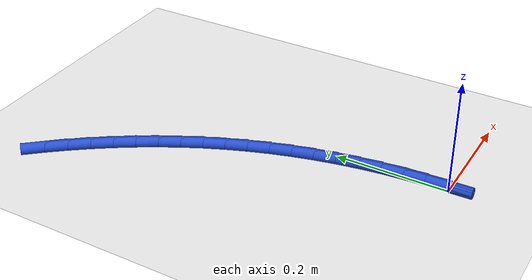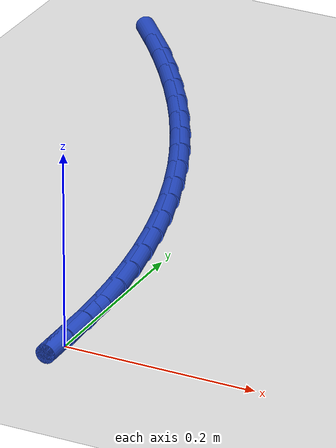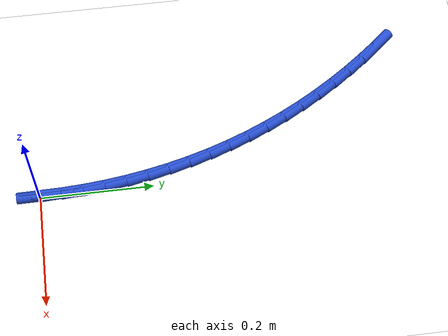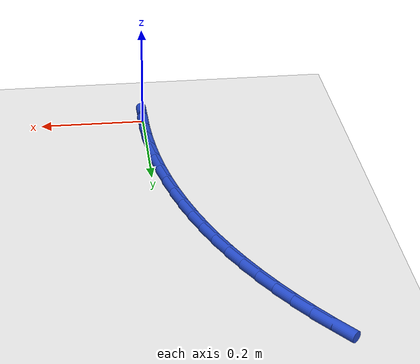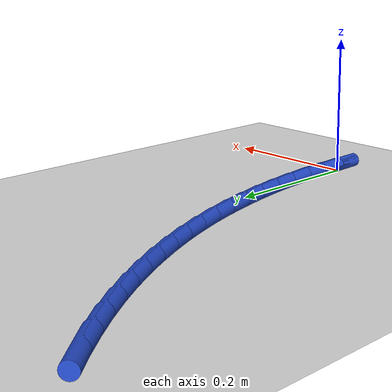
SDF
<sdf version="1.6">
 <world name="default">
  <model name="ground_plane">
   <static>1</static>
   <link name="link">
    <collision name="collision">
     <geometry><plane><normal>0 0 1</normal><size>100 100</size></plane></geometry>
     <surface><friction><ode><mu>100</mu><mu2>50</mu2></ode></friction></surface>
    </collision>
    <visual name="visual">
     <cast_shadows>0</cast_shadows>
     <geometry><plane><normal>0 0 1</normal><size>100 100</size></plane></geometry>
     <material>
      <script><uri>file://media/materials/scripts/gazebo.material</uri><name>Gazebo/WhiteGlow</name></script>
     </material>
    </visual>
   </link>
  </model>
  <model name="line">
   <link name="link_0">
    <pose>-8.673617379884035e-19 -3.469446951953614e-17 0.01 0 1.57 -1.5528007192550246</pose>
    <collision name="collision">
     <geometry><cylinder><radius>0.01</radius><length>0.08</length></cylinder></geometry>
    </collision>
    <visual name="visual">
     <material>
      <script><name>Gazebo/Blue</name><uri>file://media/materials/scripts/gazebo.material</uri></script>
     </material>
     <geometry><cylinder><radius>0.01</radius><length>0.08</length></cylinder></geometry>
    </visual>
   </link>
   <link name="link_1">
    <pose>-0.0006976188241995035 0.03876187647245469 0.01 0 1.57 -1.5145606592626306</pose>
    <collision name="collision">
     <geometry><cylinder><radius>0.01</radius><length>0.08</length></cylinder></geometry>
    </collision>
    <visual name="visual">
     <material>
      <script><name>Gazebo/Blue</name><uri>file://media/materials/scripts/gazebo.material</uri></script>
     </material>
     <geometry><cylinder><radius>0.01</radius><length>0.08</length></cylinder></geometry>
    </visual>
   </link>
   <link name="link_2">
    <pose>-0.0028753914818424892 0.07744687070640364 0.01 0 1.57 -1.476112420167916</pose>
    <collision name="collision">
     <geometry><cylinder><radius>0.01</radius><length>0.08</length></cylinder></geometry>
    </collision>
    <visual name="visual">
     <material>
      <script><name>Gazebo/Blue</name><uri>file://media/materials/scripts/gazebo.material</uri></script>
     </material>
     <geometry><cylinder><radius>0.01</radius><length>0.08</length></cylinder></geometry>
    </visual>
   </link>
   <link name="link_3">
    <pose>-0.0065362494007729964 0.11599525331651817 0.01 0 1.57 -1.4373925785867525</pose>
    <collision name="collision">
     <geometry><cylinder><radius>0.01</radius><length>0.08</length></cylinder></geometry>
    </collision>
    <visual name="visual">
     <material>
      <script><name>Gazebo/Blue</name><uri>file://media/materials/scripts/gazebo.material</uri></script>
     </material>
     <geometry><cylinder><radius>0.01</radius><length>0.08</length></cylinder></geometry>
    </visual>
   </link>
   <link name="link_4">
    <pose>-0.01168312400883506 0.15434729491746965 0.01 0 1.57 -1.3983396162019326</pose>
    <collision name="collision">
     <geometry><cylinder><radius>0.01</radius><length>0.08</length></cylinder></geometry>
    </collision>
    <visual name="visual">
     <material>
      <script><name>Gazebo/Blue</name><uri>file://media/materials/scripts/gazebo.material</uri></script>
     </material>
     <geometry><cylinder><radius>0.01</radius><length>0.08</length></cylinder></geometry>
    </visual>
   </link>
   <link name="link_5">
    <pose>-0.01831894673387273 0.19244326612392942 0.01 0 1.57 -1.3588945479753733</pose>
    <collision name="collision">
     <geometry><cylinder><radius>0.01</radius><length>0.08</length></cylinder></geometry>
    </collision>
    <visual name="visual">
     <material>
      <script><name>Gazebo/Blue</name><uri>file://media/materials/scripts/gazebo.material</uri></script>
     </material>
     <geometry><cylinder><radius>0.01</radius><length>0.08</length></cylinder></geometry>
    </visual>
   </link>
   <link name="link_6">
    <pose>-0.02644664900373002 0.23022343755056882 0.01 0 1.57 -1.3190016217012361</pose>
    <collision name="collision">
     <geometry><cylinder><radius>0.01</radius><length>0.08</length></cylinder></geometry>
    </collision>
    <visual name="visual">
     <material>
      <script><name>Gazebo/Blue</name><uri>file://media/materials/scripts/gazebo.material</uri></script>
     </material>
     <geometry><cylinder><radius>0.01</radius><length>0.08</length></cylinder></geometry>
    </visual>
   </link>
   <link name="link_7">
    <pose>-0.036069162246250994 0.26762807981205916 0.01 0 1.57 -1.2786090971801032</pose>
    <collision name="collision">
     <geometry><cylinder><radius>0.01</radius><length>0.08</length></cylinder></geometry>
    </collision>
    <visual name="visual">
     <material>
      <script><name>Gazebo/Blue</name><uri>file://media/materials/scripts/gazebo.material</uri></script>
     </material>
     <geometry><cylinder><radius>0.01</radius><length>0.08</length></cylinder></geometry>
    </visual>
   </link>
   <link name="link_8">
    <pose>-0.04718941788927965 0.30459746352307177 0.01 0 1.57 -1.237670109349435</pose>
    <collision name="collision">
     <geometry><cylinder><radius>0.01</radius><length>0.08</length></cylinder></geometry>
    </collision>
    <visual name="visual">
     <material>
      <script><name>Gazebo/Blue</name><uri>file://media/materials/scripts/gazebo.material</uri></script>
     </material>
     <geometry><cylinder><radius>0.01</radius><length>0.08</length></cylinder></geometry>
    </visual>
   </link>
   <link name="link_9">
    <pose>-0.05981034736066006 0.34107185929827794 0.01 0 1.57 -1.1961686773837916</pose>
    <collision name="collision">
     <geometry><cylinder><radius>0.01</radius><length>0.08</length></cylinder></geometry>
    </collision>
    <visual name="visual">
     <material>
      <script><name>Gazebo/Blue</name><uri>file://media/materials/scripts/gazebo.material</uri></script>
     </material>
     <geometry><cylinder><radius>0.01</radius><length>0.08</length></cylinder></geometry>
    </visual>
   </link>
   <link name="link_10">
    <pose>-0.07393401277643795 0.3769919704398651 0.01 0 1.57 -1.1548489199411496</pose>
    <collision name="collision">
     <geometry><cylinder><radius>0.01</radius><length>0.08</length></cylinder></geometry>
    </collision>
    <visual name="visual">
     <material>
      <script><name>Gazebo/Blue</name><uri>file://media/materials/scripts/gazebo.material</uri></script>
     </material>
     <geometry><cylinder><radius>0.01</radius><length>0.08</length></cylinder></geometry>
    </visual>
   </link>
   <link name="link_11">
    <pose>-0.08953555096275803 0.41231190192802536 0.01 0 1.57 -1.114594249937959</pose>
    <collision name="collision">
     <geometry><cylinder><radius>0.01</radius><length>0.08</length></cylinder></geometry>
    </collision>
    <visual name="visual">
     <material>
      <script><name>Gazebo/Blue</name><uri>file://media/materials/scripts/gazebo.material</uri></script>
     </material>
     <geometry><cylinder><radius>0.01</radius><length>0.08</length></cylinder></geometry>
    </visual>
   </link>
   <link name="link_12">
    <pose>-0.10655864610127636 0.4470014138469582 0.01 0 1.57 -1.0754243051100296</pose>
    <collision name="collision">
     <geometry><cylinder><radius>0.01</radius><length>0.08</length></cylinder></geometry>
    </collision>
    <visual name="visual">
     <material>
      <script><name>Gazebo/Blue</name><uri>file://media/materials/scripts/gazebo.material</uri></script>
     </material>
     <geometry><cylinder><radius>0.01</radius><length>0.08</length></cylinder></geometry>
    </visual>
   </link>
   <link name="link_13">
    <pose>-0.12494520072928447 0.4810311530688671 0.01 0 1.57 -1.03729612925792</pose>
    <collision name="collision">
     <geometry><cylinder><radius>0.01</radius><length>0.08</length></cylinder></geometry>
    </collision>
    <visual name="visual">
     <material>
      <script><name>Gazebo/Blue</name><uri>file://media/materials/scripts/gazebo.material</uri></script>
     </material>
     <geometry><cylinder><radius>0.01</radius><length>0.08</length></cylinder></geometry>
    </visual>
   </link>
   <link name="link_14">
    <pose>-0.14463711738407387 0.5143717664659558 0.01 0 1.57 -1.000157388574682</pose>
    <collision name="collision">
     <geometry><cylinder><radius>0.01</radius><length>0.08</length></cylinder></geometry>
    </collision>
    <visual name="visual">
     <material>
      <script><name>Gazebo/Blue</name><uri>file://media/materials/scripts/gazebo.material</uri></script>
     </material>
     <geometry><cylinder><radius>0.01</radius><length>0.08</length></cylinder></geometry>
    </visual>
   </link>
   <link name="link_15">
    <pose>-0.16557629860293596 0.5469939009104282 0.01 0 1.57 -0.9639480299845541</pose>
    <collision name="collision">
     <geometry><cylinder><radius>0.01</radius><length>0.08</length></cylinder></geometry>
    </collision>
    <visual name="visual">
     <material>
      <script><name>Gazebo/Blue</name><uri>file://media/materials/scripts/gazebo.material</uri></script>
     </material>
     <geometry><cylinder><radius>0.01</radius><length>0.08</length></cylinder></geometry>
    </visual>
   </link>
   <link name="link_16">
    <pose>-0.18770464692316247 0.5788682032744875 0.01 0 1.57 -0.9286017214251387</pose>
    <collision name="collision">
     <geometry><cylinder><radius>0.01</radius><length>0.08</length></cylinder></geometry>
    </collision>
    <visual name="visual">
     <material>
      <script><name>Gazebo/Blue</name><uri>file://media/materials/scripts/gazebo.material</uri></script>
     </material>
     <geometry><cylinder><radius>0.01</radius><length>0.08</length></cylinder></geometry>
    </visual>
   </link>
   <link name="link_17">
    <pose>-0.2109640648820448 0.6099653204303376 0.01 0 1.57 -0.8940470647975035</pose>
    <collision name="collision">
     <geometry><cylinder><radius>0.01</radius><length>0.08</length></cylinder></geometry>
    </collision>
    <visual name="visual">
     <material>
      <script><name>Gazebo/Blue</name><uri>file://media/materials/scripts/gazebo.material</uri></script>
     </material>
     <geometry><cylinder><radius>0.01</radius><length>0.08</length></cylinder></geometry>
    </visual>
   </link>
   <link name="link_18">
    <pose>-0.2352964550168744 0.6402558992501821 0.01 0 1.57 -0.860208584381806</pose>
    <collision name="collision">
     <geometry><cylinder><radius>0.01</radius><length>0.08</length></cylinder></geometry>
    </collision>
    <visual name="visual">
     <material>
      <script><name>Gazebo/Blue</name><uri>file://media/materials/scripts/gazebo.material</uri></script>
     </material>
     <geometry><cylinder><radius>0.01</radius><length>0.08</length></cylinder></geometry>
    </visual>
   </link>
   <link name="link_170">
    <pose>-7.806255641895632e-18 -1.1796119636642288e-16 0.01 0 1.57 -1.5528016739034212</pose>
    <collision name="collision">
     <geometry><cylinder><radius>0.01</radius><length>0.08</length></cylinder></geometry>
    </collision>
    <visual name="visual">
     <material>
      <script><name>Gazebo/Blue</name><uri>file://media/materials/scripts/gazebo.material</uri></script>
     </material>
     <geometry><cylinder><radius>0.01</radius><length>0.08</length></cylinder></geometry>
    </visual>
   </link>
   <link name="link_171">
    <pose>-0.0006975495165565376 0.03876008215004893 0.01 0 1.57 -1.552801673903421</pose>
    <collision name="collision">
     <geometry><cylinder><radius>0.01</radius><length>0.08</length></cylinder></geometry>
    </collision>
    <visual name="visual">
     <material>
      <script><name>Gazebo/Blue</name><uri>file://media/materials/scripts/gazebo.material</uri></script>
     </material>
     <geometry><cylinder><radius>0.01</radius><length>0.08</length></cylinder></geometry>
    </visual>
   </link>
  </model>
 </world>
</sdf>
